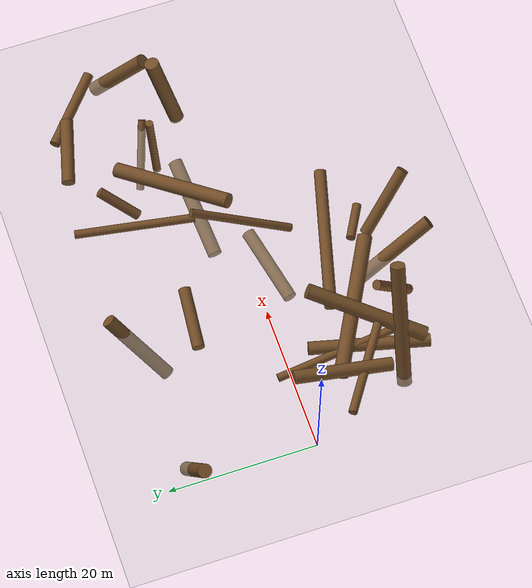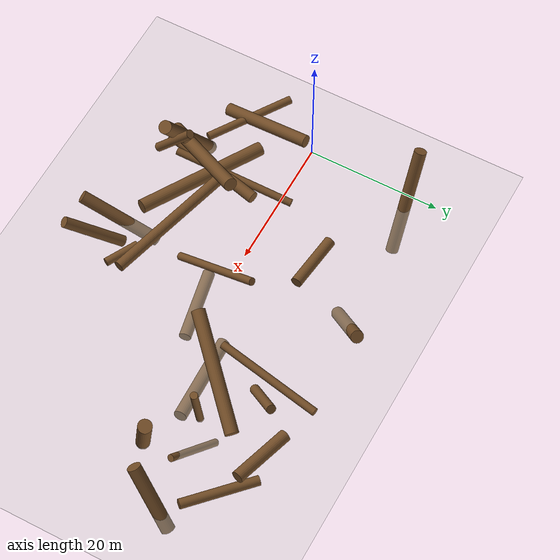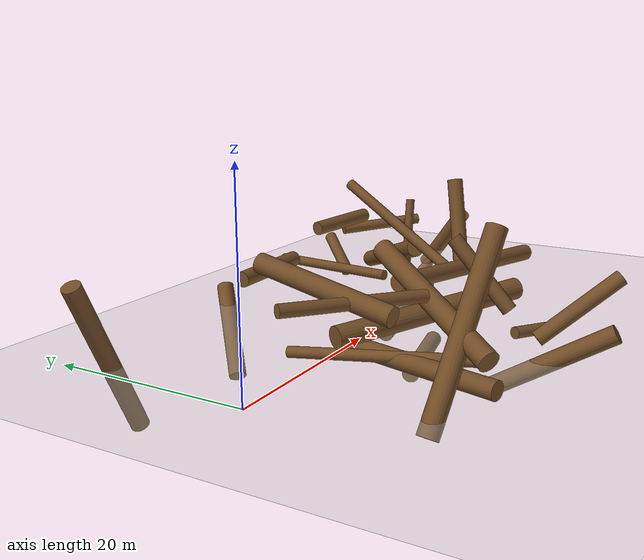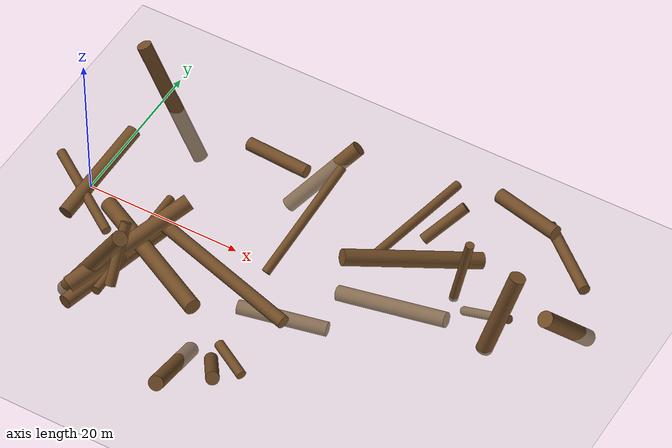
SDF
<sdf version='1.7'>
            <world name='default'>
                <light name='sun' type='directional'>
                <cast_shadows>1</cast_shadows>
                <pose>0 0 10 0 -0 0</pose>
                <diffuse>0.8 0.8 0.8 1</diffuse>
                <specular>0.2 0.2 0.2 1</specular>
                <attenuation>
                    <range>1000</range>
                    <constant>0.9</constant>
                    <linear>0.01</linear>
                    <quadratic>0.001</quadratic>
                </attenuation>
                <direction>-0.5 0.1 -0.9</direction>
                <spot>
                    <inner_angle>0</inner_angle>
                    <outer_angle>0</outer_angle>
                    <falloff>0</falloff>
                </spot>
                </light>
                <model name='ground_plane'>
                <static>1</static>
                <link name='link'>
                    <collision name='collision'>
                    <geometry>
                        <plane>
                        <normal>0 0 1</normal>
                        <size>100 100</size>
                        </plane>
                    </geometry>
                    <surface>
                        <contact>
                        <collide_bitmask>65535</collide_bitmask>
                        <ode/>
                        </contact>
                        <friction>
                        <ode>
                            <mu>100</mu>
                            <mu2>50</mu2>
                        </ode>
                        <torsional>
                            <ode/>
                        </torsional>
                        </friction>
                        <bounce/>
                    </surface>
                    <max_contacts>10</max_contacts>
                    </collision>
                    <visual name='visual'>
                    <cast_shadows>0</cast_shadows>
                    <geometry>
                        <plane>
                        <normal>0 0 1</normal>
                        <size>100 100</size>
                        </plane>
                    </geometry>
                    <material>
                        <script>
                        <uri>file://media/materials/scripts/gazebo.material</uri>
                        <name>Gazebo/Grey</name>
                        </script>
                    </material>
                    </visual>
                    <self_collide>0</self_collide>
                    <enable_wind>0</enable_wind>
                    <kinematic>0</kinematic>
                </link>
                </model>
                <gravity>0 0 -9.8</gravity>
                <magnetic_field>6e-06 2.3e-05 -4.2e-05</magnetic_field>
                <atmosphere type='adiabatic'/>
                <physics type='ode'>
                <max_step_size>0.001</max_step_size>
                <real_time_factor>1</real_time_factor>
                <real_time_update_rate>1000</real_time_update_rate>
                </physics>
                <scene>
                <ambient>0.4 0.4 0.4 1</ambient>
                <background>0.7 0.7 0.7 1</background>
                <shadows>1</shadows>
                </scene>
                <wind/>
                <spherical_coordinates>
                <surface_model>EARTH_WGS84</surface_model>
                <latitude_deg>0</latitude_deg>
                <longitude_deg>0</longitude_deg>
                <elevation>0</elevation>
                <heading_deg>0</heading_deg>
                </spherical_coordinates>
                <model name='cylinder_1'>
      <static>1</static>
      <link name='link'>
        <pose frame=''>0 0 0.1 0 -0 0</pose>
        <collision name='collision_trunk'>
          <pose frame=''>0 0 2 0 -0 0</pose>
          <geometry>
            <cylinder>
              <radius>0.8742303958073115</radius>
              <length>10.970018260250315</length>
            </cylinder>
          </geometry>
        </collision>
        <visual name='trunk'>
          <pose frame=''>0 0 2 0 -0 0</pose>
          <geometry>
            <cylinder>
              <radius>0.8742303958073115</radius>
              <length>10.970018260250315</length>
            </cylinder>
          </geometry>
          <material>
            <script>
              <uri>model://tree_simple/scripts</uri>
              <uri>model://tree_simple/materials/textures</uri>
              <name>TreeSimple/Trunk</name>
            </script>
          </material>
        </visual>
        <self_collide>0</self_collide>
        <kinematic>0</kinematic>
      </link>
      <pose frame=''>30.269167702483283 -2.803299922656251 -3.8603515842107337 55.17327091031716 92.60810599661723 7.860306653716274</pose>
    </model>
    <model name='cylinder_2'>
      <static>1</static>
      <link name='link'>
        <pose frame=''>0 0 0.1 0 -0 0</pose>
        <collision name='collision_trunk'>
          <pose frame=''>0 0 2 0 -0 0</pose>
          <geometry>
            <cylinder>
              <radius>0.8014606151249133</radius>
          <length>9.923266622688653</length>
            </cylinder>
          </geometry>
        </collision>
        <visual name='trunk'>
          <pose frame=''>0 0 2 0 -0 0</pose>
          <geometry>
            <cylinder>
              <radius>0.8014606151249133</radius>
          <length>9.923266622688653</length>
            </cylinder>
          </geometry>
          <material>
            <script>
              <uri>model://tree_simple/scripts</uri>
              <uri>model://tree_simple/materials/textures</uri>
              <name>TreeSimple/Trunk</name>
            </script>
          </material>
        </visual>
        <self_collide>0</self_collide>
        <kinematic>0</kinematic>
      </link>
      <pose frame=''>27.680460438692823 -17.88582469370987 2.4969215453330325 3.6342177781627494 27.47111969576983 40.4952833997407</pose>
    </model>
    <model name='cylinder_3'>
      <static>1</static>
      <link name='link'>
        <pose frame=''>0 0 0.1 0 -0 0</pose>
        <collision name='collision_trunk'>
          <pose frame=''>0 0 2 0 -0 0</pose>
          <geometry>
            <cylinder>
              <radius>0.9942239662126853</radius>
          <length>17.494460887404564</length>
            </cylinder>
          </geometry>
        </collision>
        <visual name='trunk'>
          <pose frame=''>0 0 2 0 -0 0</pose>
          <geometry>
            <cylinder>
              <radius>0.9942239662126853</radius>
          <length>17.494460887404564</length>
            </cylinder>
          </geometry>
          <material>
            <script>
              <uri>model://tree_simple/scripts</uri>
              <uri>model://tree_simple/materials/textures</uri>
              <name>TreeSimple/Trunk</name>
            </script>
          </material>
        </visual>
        <self_collide>0</self_collide>
        <kinematic>0</kinematic>
      </link>
      <pose frame=''>38.45574621995488 4.970008560026869 4.377117720031801 148.78213619606106 113.89523958805306 149.6768755561103</pose>
    </model>
    <model name='cylinder_4'>
      <static>1</static>
      <link name='link'>
        <pose frame=''>0 0 0.1 0 -0 0</pose>
        <collision name='collision_trunk'>
          <pose frame=''>0 0 2 0 -0 0</pose>
          <geometry>
            <cylinder>
              <radius>0.8016368865580206</radius>
          <length>19.98655225774691</length>
            </cylinder>
          </geometry>
        </collision>
        <visual name='trunk'>
          <pose frame=''>0 0 2 0 -0 0</pose>
          <geometry>
            <cylinder>
              <radius>0.8016368865580206</radius>
          <length>19.98655225774691</length>
            </cylinder>
          </geometry>
          <material>
            <script>
              <uri>model://tree_simple/scripts</uri>
              <uri>model://tree_simple/materials/textures</uri>
              <name>TreeSimple/Trunk</name>
            </script>
          </material>
        </visual>
        <self_collide>0</self_collide>
        <kinematic>0</kinematic>
      </link>
      <pose frame=''>21.995619527085594 -8.77660834026566 7.767375478143988 159.61978546956567 36.16364943654231 56.87894659673563</pose>
    </model>
    <model name='cylinder_5'>
      <static>1</static>
      <link name='link'>
        <pose frame=''>0 0 0.1 0 -0 0</pose>
        <collision name='collision_trunk'>
          <pose frame=''>0 0 2 0 -0 0</pose>
          <geometry>
            <cylinder>
              <radius>0.9326530412325633</radius>
          <length>14.024508746418377</length>
            </cylinder>
          </geometry>
        </collision>
        <visual name='trunk'>
          <pose frame=''>0 0 2 0 -0 0</pose>
          <geometry>
            <cylinder>
              <radius>0.9326530412325633</radius>
          <length>14.024508746418377</length>
            </cylinder>
          </geometry>
          <material>
            <script>
              <uri>model://tree_simple/scripts</uri>
              <uri>model://tree_simple/materials/textures</uri>
              <name>TreeSimple/Trunk</name>
            </script>
          </material>
        </visual>
        <self_collide>0</self_collide>
        <kinematic>0</kinematic>
      </link>
      <pose frame=''>36.747073504792795 3.4812270171866686 -2.797879555040998 111.3351091145757 160.7513958418008 67.7147599975856</pose>
    </model>
    <model name='cylinder_6'>
      <static>1</static>
      <link name='link'>
        <pose frame=''>0 0 0.1 0 -0 0</pose>
        <collision name='collision_trunk'>
          <pose frame=''>0 0 2 0 -0 0</pose>
          <geometry>
            <cylinder>
              <radius>0.8739690063219872</radius>
          <length>15.874027772803675</length>
            </cylinder>
          </geometry>
        </collision>
        <visual name='trunk'>
          <pose frame=''>0 0 2 0 -0 0</pose>
          <geometry>
            <cylinder>
              <radius>0.8739690063219872</radius>
          <length>15.874027772803675</length>
            </cylinder>
          </geometry>
          <material>
            <script>
              <uri>model://tree_simple/scripts</uri>
              <uri>model://tree_simple/materials/textures</uri>
              <name>TreeSimple/Trunk</name>
            </script>
          </material>
        </visual>
        <self_collide>0</self_collide>
        <kinematic>0</kinematic>
      </link>
      <pose frame=''>10.814299566196636 -8.60769941084753 2.367566085579287 36.12967659273438 61.65256469113413 172.53859490641324</pose>
    </model>
    <model name='cylinder_7'>
      <static>1</static>
      <link name='link'>
        <pose frame=''>0 0 0.1 0 -0 0</pose>
        <collision name='collision_trunk'>
          <pose frame=''>0 0 2 0 -0 0</pose>
          <geometry>
            <cylinder>
              <radius>0.5735437833321873</radius>
          <length>15.987229254892053</length>
            </cylinder>
          </geometry>
        </collision>
        <visual name='trunk'>
          <pose frame=''>0 0 2 0 -0 0</pose>
          <geometry>
            <cylinder>
              <radius>0.5735437833321873</radius>
          <length>15.987229254892053</length>
            </cylinder>
          </geometry>
          <material>
            <script>
              <uri>model://tree_simple/scripts</uri>
              <uri>model://tree_simple/materials/textures</uri>
              <name>TreeSimple/Trunk</name>
            </script>
          </material>
        </visual>
        <self_collide>0</self_collide>
        <kinematic>0</kinematic>
      </link>
      <pose frame=''>36.88391410718007 14.784406047962115 2.0426320852820803 174.1814950688958 117.63713050488734 91.09713278573673</pose>
    </model>
    <model name='cylinder_8'>
      <static>1</static>
      <link name='link'>
        <pose frame=''>0 0 0.1 0 -0 0</pose>
        <collision name='collision_trunk'>
          <pose frame=''>0 0 2 0 -0 0</pose>
          <geometry>
            <cylinder>
              <radius>0.5282301923612074</radius>
          <length>9.44807346018083</length>
            </cylinder>
          </geometry>
        </collision>
        <visual name='trunk'>
          <pose frame=''>0 0 2 0 -0 0</pose>
          <geometry>
            <cylinder>
              <radius>0.5282301923612074</radius>
          <length>9.44807346018083</length>
            </cylinder>
          </geometry>
          <material>
            <script>
              <uri>model://tree_simple/scripts</uri>
              <uri>model://tree_simple/materials/textures</uri>
              <name>TreeSimple/Trunk</name>
            </script>
          </material>
        </visual>
        <self_collide>0</self_collide>
        <kinematic>0</kinematic>
      </link>
      <pose frame=''>50.4514099705575 7.3580767191677126 -1.2005292112678583 115.69153795445754 137.403982676706 147.98890838029553</pose>
    </model>
    <model name='cylinder_9'>
      <static>1</static>
      <link name='link'>
        <pose frame=''>0 0 0.1 0 -0 0</pose>
        <collision name='collision_trunk'>
          <pose frame=''>0 0 2 0 -0 0</pose>
          <geometry>
            <cylinder>
              <radius>0.9318259575851995</radius>
          <length>11.57885479832516</length>
            </cylinder>
          </geometry>
        </collision>
        <visual name='trunk'>
          <pose frame=''>0 0 2 0 -0 0</pose>
          <geometry>
            <cylinder>
              <radius>0.9318259575851995</radius>
          <length>11.57885479832516</length>
            </cylinder>
          </geometry>
          <material>
            <script>
              <uri>model://tree_simple/scripts</uri>
              <uri>model://tree_simple/materials/textures</uri>
              <name>TreeSimple/Trunk</name>
            </script>
          </material>
        </visual>
        <self_collide>0</self_collide>
        <kinematic>0</kinematic>
      </link>
      <pose frame=''>20.56814627587996 16.086263332160833 -3.895310124749712 115.69171018330992 128.14291027075788 72.24322393293292</pose>
    </model>
    <model name='cylinder_10'>
      <static>1</static>
      <link name='link'>
        <pose frame=''>0 0 0.1 0 -0 0</pose>
        <collision name='collision_trunk'>
          <pose frame=''>0 0 2 0 -0 0</pose>
          <geometry>
            <cylinder>
              <radius>0.8108178951775334</radius>
          <length>8.337625307402792</length>
            </cylinder>
          </geometry>
        </collision>
        <visual name='trunk'>
          <pose frame=''>0 0 2 0 -0 0</pose>
          <geometry>
            <cylinder>
              <radius>0.8108178951775334</radius>
          <length>8.337625307402792</length>
            </cylinder>
          </geometry>
          <material>
            <script>
              <uri>model://tree_simple/scripts</uri>
              <uri>model://tree_simple/materials/textures</uri>
              <name>TreeSimple/Trunk</name>
            </script>
          </material>
        </visual>
        <self_collide>0</self_collide>
        <kinematic>0</kinematic>
      </link>
      <pose frame=''>17.4353268954335 10.638091514223326 5.8109448148063 48.79068397647097 11.622524859306974 161.6147323524671</pose>
    </model>
    <model name='cylinder_11'>
      <static>1</static>
      <link name='link'>
        <pose frame=''>0 0 0.1 0 -0 0</pose>
        <collision name='collision_trunk'>
          <pose frame=''>0 0 2 0 -0 0</pose>
          <geometry>
            <cylinder>
              <radius>0.5770286318481522</radius>
          <length>13.038154662459654</length>
            </cylinder>
          </geometry>
        </collision>
        <visual name='trunk'>
          <pose frame=''>0 0 2 0 -0 0</pose>
          <geometry>
            <cylinder>
              <radius>0.5770286318481522</radius>
          <length>13.038154662459654</length>
            </cylinder>
          </geometry>
          <material>
            <script>
              <uri>model://tree_simple/scripts</uri>
              <uri>model://tree_simple/materials/textures</uri>
              <name>TreeSimple/Trunk</name>
            </script>
          </material>
        </visual>
        <self_collide>0</self_collide>
        <kinematic>0</kinematic>
      </link>
      <pose frame=''>6.220352133931275 -8.929065302549857 8.872760953944102 89.49851302745476 106.94252662584046 110.92909360221866</pose>
    </model>
        <model name='cylinder_12'>
      <static>1</static>
      <link name='link'>
        <pose frame=''>0 0 0.1 0 -0 0</pose>
        <collision name='collision_trunk'>
          <pose frame=''>0 0 2 0 -0 0</pose>
          <geometry>
            <cylinder>
              <radius>0.6819933305510024</radius>
          <length>6.277322380353603</length>
            </cylinder>
          </geometry>
        </collision>
        <visual name='trunk'>
          <pose frame=''>0 0 2 0 -0 0</pose>
          <geometry>
            <cylinder>
              <radius>0.6819933305510024</radius>
          <length>6.277322380353603</length>
            </cylinder>
          </geometry>
          <material>
            <script>
              <uri>model://tree_simple/scripts</uri>
              <uri>model://tree_simple/materials/textures</uri>
              <name>TreeSimple/Trunk</name>
            </script>
          </material>
        </visual>
        <self_collide>0</self_collide>
        <kinematic>0</kinematic>
      </link>
      <pose frame=''>38.92012065936856 12.328946678955546 1.7082810120584968 90.10258546919114 147.79654744391107 159.48866539172207</pose>
    </model>
    <model name='cylinder_13'>
      <static>1</static>
      <link name='link'>
        <pose frame=''>0 0 0.1 0 -0 0</pose>
        <collision name='collision_trunk'>
          <pose frame=''>0 0 2 0 -0 0</pose>
          <geometry>
            <cylinder>
              <radius>0.9134652716788443</radius>
          <length>17.318171007743505</length>
            </cylinder>
          </geometry>
        </collision>
        <visual name='trunk'>
          <pose frame=''>0 0 2 0 -0 0</pose>
          <geometry>
            <cylinder>
              <radius>0.9134652716788443</radius>
          <length>17.318171007743505</length>
            </cylinder>
          </geometry>
          <material>
            <script>
              <uri>model://tree_simple/scripts</uri>
              <uri>model://tree_simple/materials/textures</uri>
              <name>TreeSimple/Trunk</name>
            </script>
          </material>
        </visual>
        <self_collide>0</self_collide>
        <kinematic>0</kinematic>
      </link>
      <pose frame=''>2.353860109628254 15.962463661362364 -1.1495820735034714 116.59870795599088 15.448947743487494 164.35656567212897</pose>
    </model>
    <model name='cylinder_14'>
      <static>1</static>
      <link name='link'>
        <pose frame=''>0 0 0.1 0 -0 0</pose>
        <collision name='collision_trunk'>
          <pose frame=''>0 0 2 0 -0 0</pose>
          <geometry>
            <cylinder>
              <radius>0.5481448184515845</radius>
          <length>14.820081989286539</length>
            </cylinder>
          </geometry>
        </collision>
        <visual name='trunk'>
          <pose frame=''>0 0 2 0 -0 0</pose>
          <geometry>
            <cylinder>
              <radius>0.5481448184515845</radius>
          <length>14.820081989286539</length>
            </cylinder>
          </geometry>
          <material>
            <script>
              <uri>model://tree_simple/scripts</uri>
              <uri>model://tree_simple/materials/textures</uri>
              <name>TreeSimple/Trunk</name>
            </script>
          </material>
        </visual>
        <self_collide>0</self_collide>
        <kinematic>0</kinematic>
      </link>
      <pose frame=''>28.576760978089812 -1.3137626430718932 8.9256283306067 107.33652067460781 88.94172371275482 115.07089307166812</pose>
    </model>
    <model name='cylinder_15'>
      <static>1</static>
      <link name='link'>
        <pose frame=''>0 0 0.1 0 -0 0</pose>
        <collision name='collision_trunk'>
          <pose frame=''>0 0 2 0 -0 0</pose>
          <geometry>
            <cylinder>
              <radius>0.9969147157179463</radius>
          <length>19.651945373945477</length>
            </cylinder>
          </geometry>
        </collision>
        <visual name='trunk'>
          <pose frame=''>0 0 2 0 -0 0</pose>
          <geometry>
            <cylinder>
              <radius>0.9969147157179463</radius>
          <length>19.651945373945477</length>
            </cylinder>
          </geometry>
          <material>
            <script>
              <uri>model://tree_simple/scripts</uri>
              <uri>model://tree_simple/materials/textures</uri>
              <name>TreeSimple/Trunk</name>
            </script>
          </material>
        </visual>
        <self_collide>0</self_collide>
        <kinematic>0</kinematic>
      </link>
      <pose frame=''>12.801864251941396 -8.849460685603967 5.679214841585296 101.92960247407001 155.8942405137265 145.74498732583706</pose>
    </model>
    <model name='cylinder_38'>
  <static>1</static>
  <link name='link'>
    <pose frame=''>0 0 0.1 0 -0 0</pose>
    <collision name='collision_trunk'>
      <pose frame=''>0 0 2 0 -0 0</pose>
      <geometry>
        <cylinder>
          <radius>0.9216268348</radius>
          <length>12.6709004426</length>
        </cylinder>
      </geometry>
    </collision>
    <visual name='trunk'>
      <pose frame=''>0 0 2 0 -0 0</pose>
      <geometry>
        <cylinder>
          <radius>0.9216268348</radius>
          <length>12.6709004426</length>
        </cylinder>
      </geometry>
      <material>
        <script>
          <uri>model://tree_simple/scripts</uri>
          <uri>model://tree_simple/materials/textures</uri>
          <name>TreeSimple/Trunk</name>
        </script>
      </material>
    </visual>
    <self_collide>0</self_collide>
    <kinematic>0</kinematic>
  </link>
  <pose frame=''>22.6523486804 -16.7925607395 -0.967943591 222.2040136932 266.3390728542 239.4768464886</pose>
</model>

<model name='cylinder_39'>
  <static>1</static>
  <link name='link'>
    <pose frame=''>0 0 0.1 0 -0 0</pose>
    <collision name='collision_trunk'>
      <pose frame=''>0 0 2 0 -0 0</pose>
      <geometry>
        <cylinder>
          <radius>0.9872748193</radius>
          <length>11.9368036581</length>
        </cylinder>
      </geometry>
    </collision>
    <visual name='trunk'>
      <pose frame=''>0 0 2 0 -0 0</pose>
      <geometry>
        <cylinder>
          <radius>0.9872748193</radius>
          <length>11.9368036581</length>
        </cylinder>
      </geometry>
      <material>
        <script>
          <uri>model://tree_simple/scripts</uri>
          <uri>model://tree_simple/materials/textures</uri>
          <name>TreeSimple/Trunk</name>
        </script>
      </material>
    </visual>
    <self_collide>0</self_collide>
    <kinematic>0</kinematic>
  </link>
  <pose frame=''>52.657530624 2.7176947232 3.1719016026 351.5590369573 332.9665501251 93.2999737983</pose>
</model>

<model name='cylinder_40'>
  <static>1</static>
  <link name='link'>
    <pose frame=''>0 0 0.1 0 -0 0</pose>
    <collision name='collision_trunk'>
      <pose frame=''>0 0 2 0 -0 0</pose>
      <geometry>
        <cylinder>
          <radius>0.6446951251</radius>
          <length>7.4864279168</length>
        </cylinder>
      </geometry>
    </collision>
    <visual name='trunk'>
      <pose frame=''>0 0 2 0 -0 0</pose>
      <geometry>
        <cylinder>
          <radius>0.6446951251</radius>
          <length>7.4864279168</length>
        </cylinder>
      </geometry>
      <material>
        <script>
          <uri>model://tree_simple/scripts</uri>
          <uri>model://tree_simple/materials/textures</uri>
          <name>TreeSimple/Trunk</name>
        </script>
      </material>
    </visual>
    <self_collide>0</self_collide>
    <kinematic>0</kinematic>
  </link>
  <pose frame=''>13.7595865934 -16.0697791856 8.5127764533 179.7205067358 247.859083861 225.9310502416</pose>
</model>

<model name='cylinder_41'>
  <static>1</static>
  <link name='link'>
    <pose frame=''>0 0 0.1 0 -0 0</pose>
    <collision name='collision_trunk'>
      <pose frame=''>0 0 2 0 -0 0</pose>
      <geometry>
        <cylinder>
          <radius>0.5485520129</radius>
          <length>18.0009821353</length>
        </cylinder>
      </geometry>
    </collision>
    <visual name='trunk'>
      <pose frame=''>0 0 2 0 -0 0</pose>
      <geometry>
        <cylinder>
          <radius>0.5485520129</radius>
          <length>18.0009821353</length>
        </cylinder>
      </geometry>
      <material>
        <script>
          <uri>model://tree_simple/scripts</uri>
          <uri>model://tree_simple/materials/textures</uri>
          <name>TreeSimple/Trunk</name>
        </script>
      </material>
    </visual>
    <self_collide>0</self_collide>
    <kinematic>0</kinematic>
  </link>
  <pose frame=''>10.6126162719 -9.0654274948 2.7121822057 252.7791364028 223.3248027561 235.7155865249</pose>
</model>

<model name='cylinder_42'>
  <static>1</static>
  <link name='link'>
    <pose frame=''>0 0 0.1 0 -0 0</pose>
    <collision name='collision_trunk'>
      <pose frame=''>0 0 2 0 -0 0</pose>
      <geometry>
        <cylinder>
          <radius>0.6008301902</radius>
          <length>5.150244898</length>
        </cylinder>
      </geometry>
    </collision>
    <visual name='trunk'>
      <pose frame=''>0 0 2 0 -0 0</pose>
      <geometry>
        <cylinder>
          <radius>0.6008301902</radius>
          <length>5.150244898</length>
        </cylinder>
      </geometry>
      <material>
        <script>
          <uri>model://tree_simple/scripts</uri>
          <uri>model://tree_simple/materials/textures</uri>
          <name>TreeSimple/Trunk</name>
        </script>
      </material>
    </visual>
    <self_collide>0</self_collide>
    <kinematic>0</kinematic>
  </link>
  <pose frame=''>26.5773614889 -14.061702215 1.0726251938 102.04604216 78.9817174296 233.5638508346</pose>
</model>

<model name='cylinder_43'>
  <static>1</static>
  <link name='link'>
    <pose frame=''>0 0 0.1 0 -0 0</pose>
    <collision name='collision_trunk'>
      <pose frame=''>0 0 2 0 -0 0</pose>
      <geometry>
        <cylinder>
          <radius>0.9774866499</radius>
          <length>16.6283016974</length>
        </cylinder>
      </geometry>
    </collision>
    <visual name='trunk'>
      <pose frame=''>0 0 2 0 -0 0</pose>
      <geometry>
        <cylinder>
          <radius>0.9774866499</radius>
          <length>16.6283016974</length>
        </cylinder>
      </geometry>
      <material>
        <script>
          <uri>model://tree_simple/scripts</uri>
          <uri>model://tree_simple/materials/textures</uri>
          <name>TreeSimple/Trunk</name>
        </script>
      </material>
    </visual>
    <self_collide>0</self_collide>
    <kinematic>0</kinematic>
  </link>
  <pose frame=''>11.4013336077 -12.5235709758 6.7598667019 234.6009422511 272.4758958795 222.9432584141</pose>
</model>

<model name='cylinder_44'>
  <static>1</static>
  <link name='link'>
    <pose frame=''>0 0 0.1 0 -0 0</pose>
    <collision name='collision_trunk'>
      <pose frame=''>0 0 2 0 -0 0</pose>
      <geometry>
        <cylinder>
          <radius>0.8842660244</radius>
          <length>13.1964481636</length>
        </cylinder>
      </geometry>
    </collision>
    <visual name='trunk'>
      <pose frame=''>0 0 2 0 -0 0</pose>
      <geometry>
        <cylinder>
          <radius>0.8842660244</radius>
          <length>13.1964481636</length>
        </cylinder>
      </geometry>
      <material>
        <script>
          <uri>model://tree_simple/scripts</uri>
          <uri>model://tree_simple/materials/textures</uri>
          <name>TreeSimple/Trunk</name>
        </script>
      </material>
    </visual>
    <self_collide>0</self_collide>
    <kinematic>0</kinematic>
  </link>
  <pose frame=''>4.9592456229 -2.7191370282 9.9974158857 98.1232407716 262.5690597279 349.4467945675</pose>
</model>

<model name='cylinder_45'>
  <static>1</static>
  <link name='link'>
    <pose frame=''>0 0 0.1 0 -0 0</pose>
    <collision name='collision_trunk'>
      <pose frame=''>0 0 2 0 -0 0</pose>
      <geometry>
        <cylinder>
          <radius>0.8848453336</radius>
          <length>8.9639705781</length>
        </cylinder>
      </geometry>
    </collision>
    <visual name='trunk'>
      <pose frame=''>0 0 2 0 -0 0</pose>
      <geometry>
        <cylinder>
          <radius>0.8848453336</radius>
          <length>8.9639705781</length>
        </cylinder>
      </geometry>
      <material>
        <script>
          <uri>model://tree_simple/scripts</uri>
          <uri>model://tree_simple/materials/textures</uri>
          <name>TreeSimple/Trunk</name>
        </script>
      </material>
    </visual>
    <self_collide>0</self_collide>
    <kinematic>0</kinematic>
  </link>
  <pose frame=''>50.4512013572 17.5580528372 5.105545057 239.904973179 165.1007477184 22.8646532824</pose>
</model>

<model name='cylinder_46'>
  <static>1</static>
  <link name='link'>
    <pose frame=''>0 0 0.1 0 -0 0</pose>
    <collision name='collision_trunk'>
      <pose frame=''>0 0 2 0 -0 0</pose>
      <geometry>
        <cylinder>
          <radius>0.6968872595</radius>
          <length>11.100660586</length>
        </cylinder>
      </geometry>
    </collision>
    <visual name='trunk'>
      <pose frame=''>0 0 2 0 -0 0</pose>
      <geometry>
        <cylinder>
          <radius>0.6968872595</radius>
          <length>11.100660586</length>
        </cylinder>
      </geometry>
      <material>
        <script>
          <uri>model://tree_simple/scripts</uri>
          <uri>model://tree_simple/materials/textures</uri>
          <name>TreeSimple/Trunk</name>
        </script>
      </material>
    </visual>
    <self_collide>0</self_collide>
    <kinematic>0</kinematic>
  </link>
  <pose frame=''>56.6593506343 14.1346462126 3.8879165808 170.6052193779 315.8521559847 286.1236522264</pose>
</model>

<model name='cylinder_47'>
  <static>1</static>
  <link name='link'>
    <pose frame=''>0 0 0.1 0 -0 0</pose>
    <collision name='collision_trunk'>
      <pose frame=''>0 0 2 0 -0 0</pose>
      <geometry>
        <cylinder>
          <radius>0.5339816506</radius>
          <length>9.9606717794</length>
        </cylinder>
      </geometry>
    </collision>
    <visual name='trunk'>
      <pose frame=''>0 0 2 0 -0 0</pose>
      <geometry>
        <cylinder>
          <radius>0.5339816506</radius>
          <length>9.9606717794</length>
        </cylinder>
      </geometry>
      <material>
        <script>
          <uri>model://tree_simple/scripts</uri>
          <uri>model://tree_simple/materials/textures</uri>
          <name>TreeSimple/Trunk</name>
        </script>
      </material>
    </visual>
    <self_collide>0</self_collide>
    <kinematic>0</kinematic>
  </link>
  <pose frame=''>45.5604039437 6.9811487899 2.2474350551 0.0321548529 263.7221303631 323.5813765335</pose>
</model>

<model name='cylinder_48'>
  <static>1</static>
  <link name='link'>
    <pose frame=''>0 0 0.1 0 -0 0</pose>
    <collision name='collision_trunk'>
      <pose frame=''>0 0 2 0 -0 0</pose>
      <geometry>
        <cylinder>
          <radius>0.9645834656</radius>
          <length>18.0666426813</length>
        </cylinder>
      </geometry>
    </collision>
    <visual name='trunk'>
      <pose frame=''>0 0 2 0 -0 0</pose>
      <geometry>
        <cylinder>
          <radius>0.9645834656</radius>
          <length>18.0666426813</length>
        </cylinder>
      </geometry>
      <material>
        <script>
          <uri>model://tree_simple/scripts</uri>
          <uri>model://tree_simple/materials/textures</uri>
          <name>TreeSimple/Trunk</name>
        </script>
      </material>
    </visual>
    <self_collide>0</self_collide>
    <kinematic>0</kinematic>
  </link>
  <pose frame=''>10.9667840666 -14.8719612749 8.0445971769 50.371567401 40.308973931 160.2547557823</pose>
</model>

<model name='cylinder_49'>
  <static>1</static>
  <link name='link'>
    <pose frame=''>0 0 0.1 0 -0 0</pose>
    <collision name='collision_trunk'>
      <pose frame=''>0 0 2 0 -0 0</pose>
      <geometry>
        <cylinder>
          <radius>0.9928080547</radius>
          <length>10.5215672827</length>
        </cylinder>
      </geometry>
    </collision>
    <visual name='trunk'>
      <pose frame=''>0 0 2 0 -0 0</pose>
      <geometry>
        <cylinder>
          <radius>0.9928080547</radius>
          <length>10.5215672827</length>
        </cylinder>
      </geometry>
      <material>
        <script>
          <uri>model://tree_simple/scripts</uri>
          <uri>model://tree_simple/materials/textures</uri>
          <name>TreeSimple/Trunk</name>
        </script>
      </material>
    </visual>
    <self_collide>0</self_collide>
    <kinematic>0</kinematic>
  </link>
  <pose frame=''>59.8172910049 8.896698683 0.0879030169 100.4209143077 206.6572962233 26.4894712663</pose>
</model>
            </world>
            </sdf>
